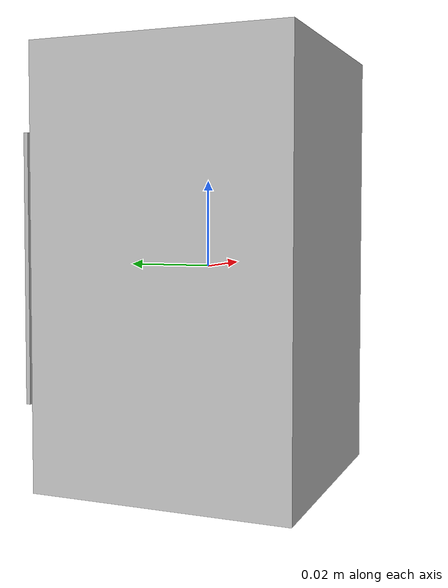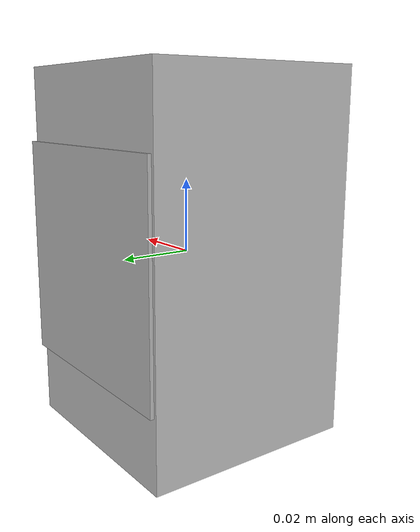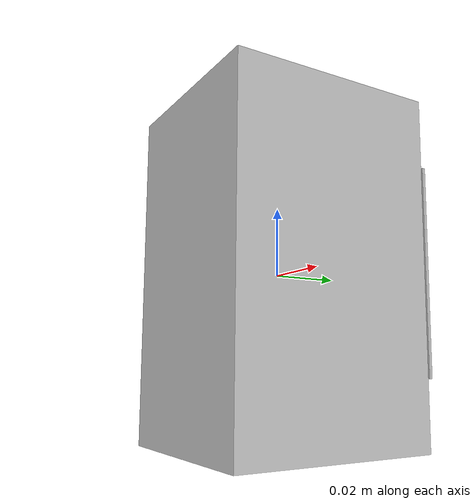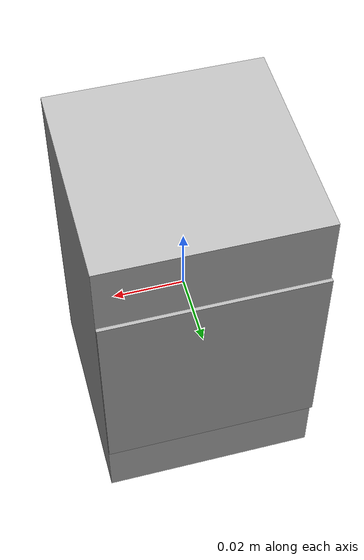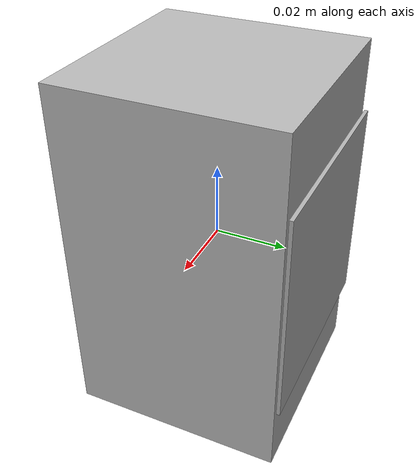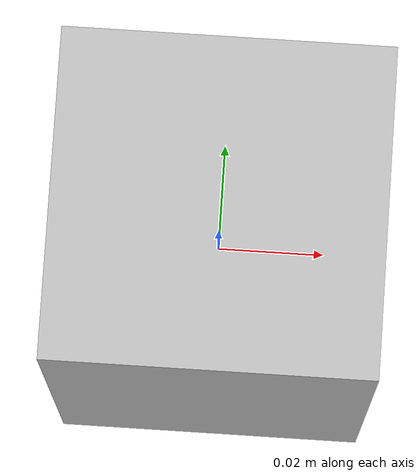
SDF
<?xml version='1.0'?>
<sdf version='1.6'>
  <model name='object'>
    <link name='link_0'>
      <pose frame=''>0 0 0 0 -0 0</pose>
      <inertial>
        <mass>1</mass>
        <inertia>
          <ixx>0.166667</ixx>
          <ixy>0</ixy>
          <ixz>0</ixz>
          <iyy>0.166667</iyy>
          <iyz>0</iyz>
          <izz>0.166667</izz>
        </inertia>
      </inertial>
      <visual name='visual'>
        <pose frame=''>0 0 0 0 -0 0</pose>
        <geometry>
          <box>
            <size>0.06 0.06 0.1</size>
          </box>
        </geometry>
      </visual>
      <collision name='collision'>
        <laser_retro>0</laser_retro>
        <max_contacts>10</max_contacts>
        <pose frame=''>0 0 0 0 -0 0</pose>
        <geometry>
          <box>
            <size>0.06 0.06 0.1</size>
          </box>
        </geometry>
        <surface>
          <friction>
            <ode>
              <mu>1</mu>
              <mu2>1</mu2>
              <fdir1>0 0 0</fdir1>
              <slip1>0</slip1>
              <slip2>0</slip2>
            </ode>
            <torsional>
              <coefficient>1</coefficient>
              <patch_radius>0</patch_radius>
              <surface_radius>0</surface_radius>
              <use_patch_radius>1</use_patch_radius>
              <ode>
                <slip>0</slip>
              </ode>
            </torsional>
          </friction>
        </surface>
      </collision>
    </link>
    <link name='link_1'>
      <pose frame=''>0 0.031 0 0 -0 0</pose>
      <inertial>
        <mass>0.001</mass>
        <inertia>
          <ixx>0.166667</ixx>
          <ixy>0</ixy>
          <ixz>0</ixz>
          <iyy>0.166667</iyy>
          <iyz>0</iyz>
          <izz>0.166667</izz>
        </inertia>
      </inertial>
      <visual name='visual'>
        <pose frame=''>0 0 0 0 -0 0</pose>
        <geometry>
          <box>
            <size>0.06 0.001 0.06</size>
          </box>
        </geometry>
        <material>
          <lighting>1</lighting>
          <script>
	    <uri>model://object_marker/materials/scripts</uri>
 	    <uri>model://object_marker/materials/textures</uri>
            <name>object/marker</name>
          </script>
          <ambient>0.3 0.3 0.3 1</ambient>
          <diffuse>0.7 0.7 0.7 1</diffuse>
          <specular>0.01 0.01 0.01 1</specular>
          <emissive>0 0 0 1</emissive>
        </material>
        <cast_shadows>1</cast_shadows>
        <transparency>0</transparency>
      </visual>
      <collision name='collision'>
        <laser_retro>0</laser_retro>
        <max_contacts>10</max_contacts>
        <pose frame=''>0 0 0 0 -0 0</pose>
        <geometry>
          <box>
            <size>0.06 0.06 0.1</size>
          </box>
        </geometry>
      </collision>
    </link>
    <static>0</static>
    <allow_auto_disable>1</allow_auto_disable>
    <joint name="object_marker_joint" type="fixed">
      <origin xyz="0.0 0.0 0.0" rpy="0 0 0" />
      <parent link="link_0" />
      <child link="link_1" />
    </joint>
  </model>
</sdf>
